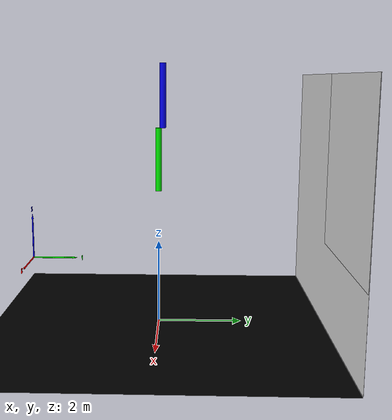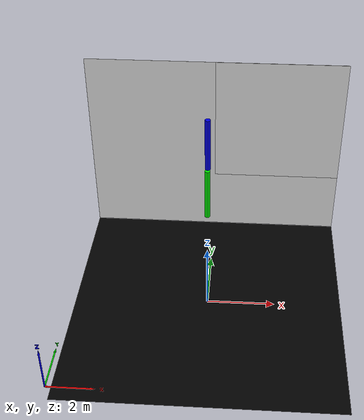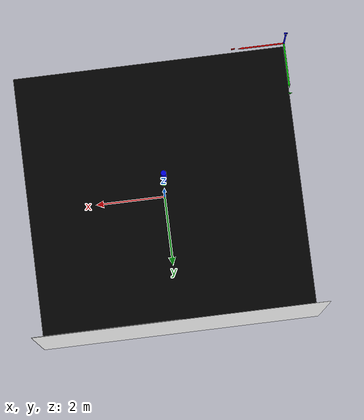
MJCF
<mujoco>
	<option timestep="0.05" gravity="0 0 -9.81" integrator="RK4">
		<flag sensornoise="enable" energy="enable"/>
	</option>
	<include file="mlpro.xml"></include>
	<worldbody>

		<body name="link1" pos="0 0 4" euler="0 0 0">
			<joint name="pin1" type="hinge" axis = "0 1 0" pos="0 0 -0.75"/>
			<inertial pos="0 0 0" mass="1" diaginertia="1 1 1" />
			<geom type="cylinder" size="0.075 0.75" rgba="0 .9 0 1"/>

			<!-- Second Link -->
			<body name="link2" pos="0 0.1 1.5" euler="0 0 0">
				<joint name="pin2" type="hinge" axis = "0 1 0" pos="0 0 -0.75"/>
				<inertial pos="0 0 0" mass="1" diaginertia="1 1 1" />
				<geom type="cylinder" size="0.075 0.75" rgba="0 0 0.9 1"/>
			</body>

		</body>

	</worldbody>

	<actuator>
		<motor joint="pin1" name="pin1" gear="1" ctrllimited="true" ctrlrange="-50 50"/>
	</actuator>
</mujoco>

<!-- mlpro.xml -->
<mujoco>
    <compiler meshdir="assets/mlpro/mesh/" texturedir="assets/mlpro/texture/"/>
    <asset>
        <mesh name="arrow" file="Arrow.stl"/>
        <mesh name="x_letter" file="X_letter.stl"/>
        <mesh name="y_letter" file="Y_letter.stl"/>
        <mesh name="z_letter" file="Z_letter.stl"/>
        <texture name="mlpro_logo" type="2d" file="logo.png"/>
        <texture name="texplane" type="2d" builtin="checker" rgb1="0 0 0" rgb2="0 0 0" width="40" height="40" mark="cross" markrgb="0.5 0.5 0.5"/>

        <material name="mlpro_mat" texture="mlpro_logo" rgba="1 1 1 1"/>

        <material name="grid" texture="texplane" texrepeat="2 2" texuniform="true" reflectance="0"/>
    </asset>
    <worldbody>
    <!-- Light -->
    <light diffuse="1 1 1" directional="true" castshadow="false" pos="0 0 0" dir="0 0 -1"/>
    <light diffuse="0.1 0.1 0.1" directional="true" castshadow="false" pos="0 0 0" dir="0 1 0"/>

    <!-- Floor -->
	<geom type="plane" material="grid" size="4 4 0.1"/>

    <!-- Back with MLPro Logo -->
    <geom type="plane" size="4 3 0.1" pos="0 4 3" quat="0.7071068 0.7071068 0 0" rgba="1 1 1 1"/>
    <geom type="plane" material="mlpro_mat" size="2 2 0.1" pos="2 3.99 4" quat="0.7071068 0.7071068 0 0" rgba="1 1 1 1"/>

    <!-- Axis Arrow -->
    <geom type="mesh" mesh="arrow" pos="-4 -4 0.5" quat="1 0 0 0" rgba="0 0 1 1"/>
    <geom type="mesh" mesh="arrow" pos="-4 -4 0.5" quat="0.7071068 -0.7071068 0 0" rgba="0 1 0 1"/>
    <geom type="mesh" mesh="arrow" pos="-4 -4 0.5" quat="0.7071068 0 0.7071068 0" rgba="1 0 0 1"/>

    <!-- Axis Text -->
    <geom type="mesh" mesh="x_letter" pos="-2.5 -4 0.5" quat="0.7071068 0.7071068 0 0" rgba="1 0 0 1"/>
    <geom type="mesh" mesh="y_letter" pos="-4 -2.5 0.5" quat="0.7071068 0.7071068 0 0" rgba="0 1 0 1"/>
    <geom type="mesh" mesh="z_letter" pos="-4 -4 2" quat="0.7071068 0.7071068 0 0" rgba="0 0 1 1"/>
    </worldbody>
</mujoco>
